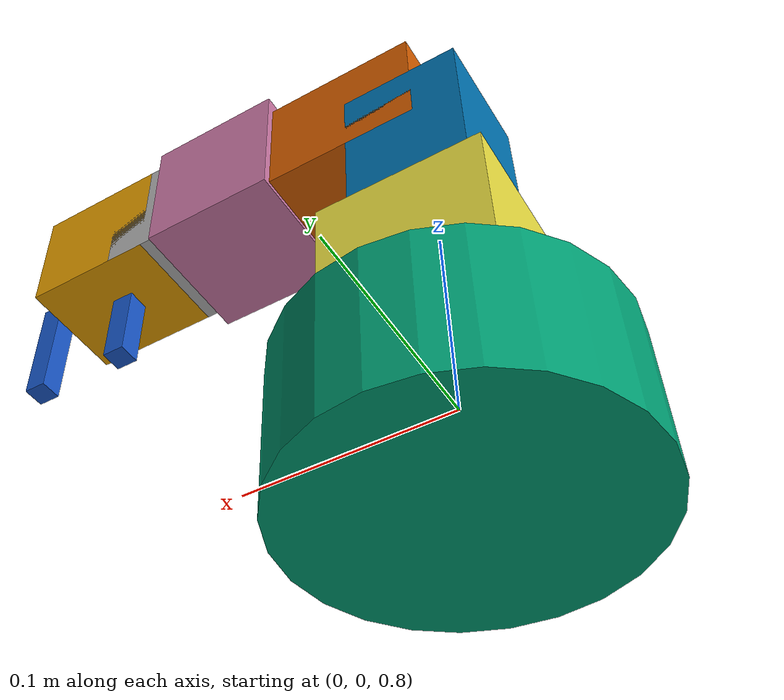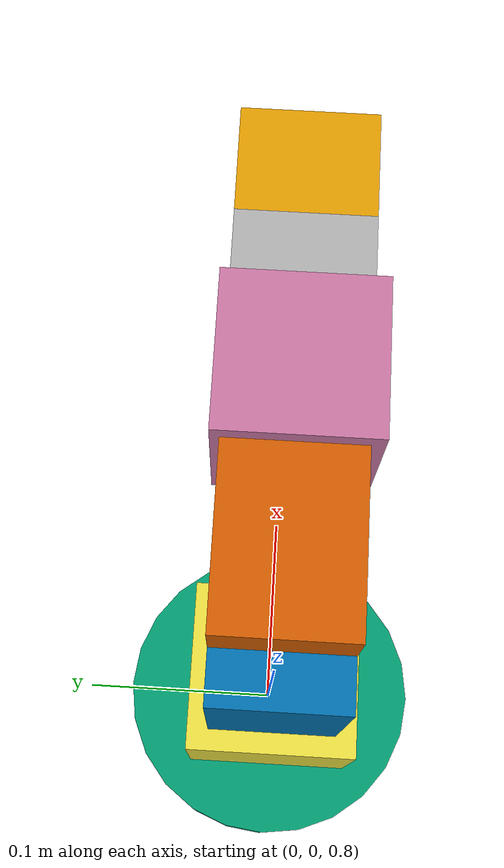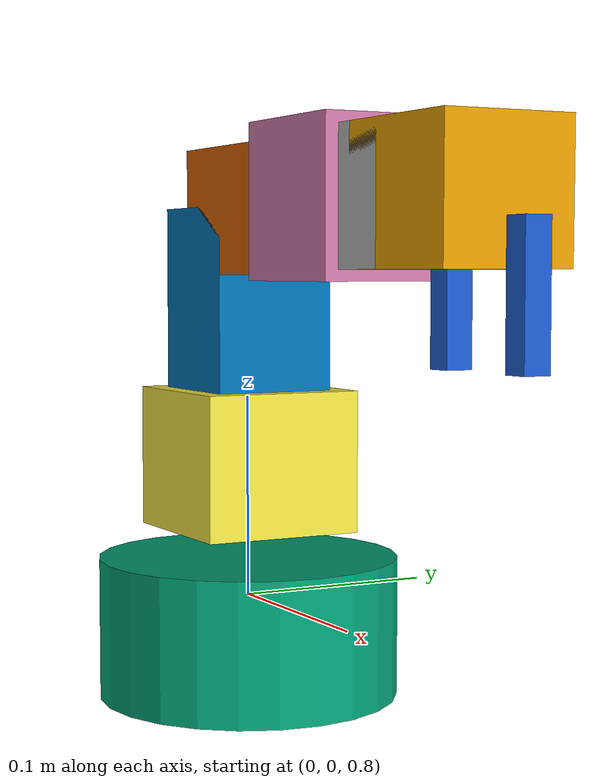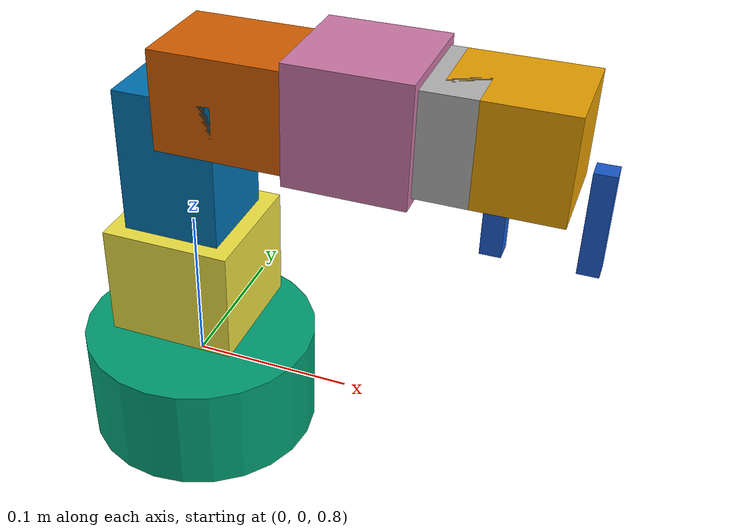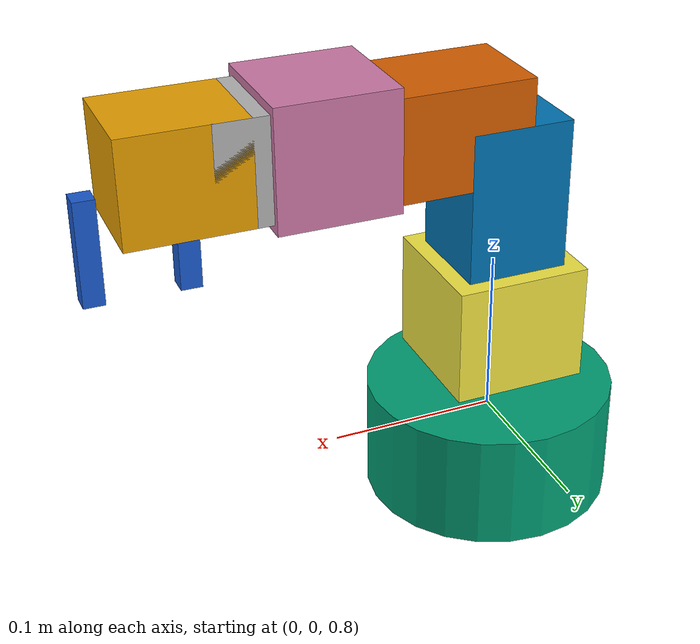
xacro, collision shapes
<?xml version="1.0"?>
<robot xmlns:xacro="http://www.ros.org/wiki/xacro" name="mecharm270_sim">
  <xacro:arg name="controllers_file" default=""/>
  <xacro:arg name="simulator" default="classic"/>
  <xacro:property name="simulator_backend" value="$(arg simulator)"/>
  <xacro:property name="arm_radius" value="0.026"/>

  <xacro:macro name="contact_sensor" params="link collision topic:=/gazebo/contacts/robot">
    <gazebo reference="${link}">
      <sensor type="contact" name="${link}_contact_sensor">
        <always_on>true</always_on>
        <update_rate>100</update_rate>
        <contact><collision>${collision}</collision><topic>${topic}</topic></contact>
        <xacro:if value="${simulator_backend == 'classic'}">
        <plugin name="${link}_contact_publisher" filename="libgazebo_ros_bumper.so">
          <ros>
            <namespace>/gazebo</namespace>
            <remapping>bumper_states:=contacts/robot</remapping>
          </ros>
          <frame_name>world</frame_name>
        </plugin>
        </xacro:if>
      </sensor>
    </gazebo>
  </xacro:macro>

  <material name="white"><color rgba="0.92 0.92 0.92 1"/></material>
  <material name="blue"><color rgba="0.10 0.35 0.80 1"/></material>
  <material name="dark"><color rgba="0.08 0.08 0.10 1"/></material>
  <xacro:property name="cad_mesh_root"
                  value="package://robot_pick_place_sim/meshes/mecharm_270_m5"/>

  <!-- The world joint represents the bolted base required by the experiment.
       Its 0.75 m offset is shared by Gazebo and TF, avoiding a second transform. -->
  <link name="world"/>
  <joint name="world_fixed_joint" type="fixed">
    <parent link="world"/><child link="base_footprint"/>
    <origin xyz="0 0 0.75"/>
  </joint>
  <!-- Inertia-free frame keeps the KDL root path valid. -->
  <link name="base_footprint"/>
  <joint name="base_fixed" type="fixed">
    <parent link="base_footprint"/><child link="base_link"/>
  </joint>

  <xacro:macro name="cad_link"
               params="name visual_xyz visual_rpy collision_xyz collision_size mass:=0.25">
    <link name="${name}">
      <inertial><origin xyz="${collision_xyz}"/><mass value="${mass}"/><inertia ixx="0.001" ixy="0" ixz="0" iyy="0.001" iyz="0" izz="0.001"/></inertial>
      <visual><origin xyz="${visual_xyz}" rpy="${visual_rpy}"/><geometry><mesh filename="${cad_mesh_root}/${name}.dae"/></geometry></visual>
      <collision name="${name}_collision"><origin xyz="${collision_xyz}"/><geometry><box size="${collision_size}"/></geometry></collision>
    </link>
  </xacro:macro>

  <link name="base_link">
    <inertial><mass value="1.0"/><inertia ixx="0.01" ixy="0" ixz="0" iyy="0.01" iyz="0" izz="0.01"/></inertial>
    <visual><origin xyz="0 0 0" rpy="0 0 -${pi}"/><geometry><mesh filename="${cad_mesh_root}/base.dae"/></geometry></visual>
    <collision name="base_link_collision"><origin xyz="0 0 0.035"/><geometry><cylinder radius="0.075" length="0.07"/></geometry></collision>
  </link>
  <xacro:cad_link name="link1" visual_xyz="0 0 -0.132" visual_rpy="0 0 0"
                  collision_xyz="0 0 0.019" collision_size="0.08 0.08 0.07" mass="0.5"/>
  <xacro:cad_link name="link2" visual_xyz="-0.005 0.21 0.002" visual_rpy="1.5708 -${pi} 0"
                  collision_xyz="0 -0.05 0" collision_size="0.06 0.11 0.06"/>
  <xacro:cad_link name="link3" visual_xyz="-0.09 0.306 0.005" visual_rpy="1.5708 ${pi} 0"
                  collision_xyz="0.054 -0.0025 0" collision_size="0.12 0.06 0.06"/>
  <xacro:cad_link name="link4" visual_xyz="0.009 -0.311 -0.228" visual_rpy="0 1.5708 1.5708"
                  collision_xyz="0 0 0" collision_size="0.07 0.07 0.07"/>
  <xacro:cad_link name="link5" visual_xyz="-0.292 -0.318 -0.007" visual_rpy="1.5708 0 ${pi}"
                  collision_xyz="0.03 0 0" collision_size="0.07 0.06 0.06"/>
  <xacro:cad_link name="link6" visual_xyz="-0.1645 0.0536 -0.211" visual_rpy="0 1.5708 0"
                  collision_xyz="0 0 0.019" collision_size="0.06 0.06 0.07"/>

  <xacro:macro name="arm_joint" params="name parent child xyz rpy lower upper">
    <joint name="${name}" type="revolute"><parent link="${parent}"/><child link="${child}"/><origin xyz="${xyz}" rpy="${rpy}"/><axis xyz="0 0 1"/><limit lower="${lower}" upper="${upper}" effort="30" velocity="1.5"/><dynamics damping="0.15" friction="0.05"/></joint>
  </xacro:macro>
  <xacro:arm_joint name="joint1" parent="base_link" child="link1" xyz="0 0 0.1" rpy="0 0 0" lower="-2.792527" upper="2.792527"/>
  <xacro:arm_joint name="joint2" parent="link1" child="link2" xyz="0 0 0.038" rpy="-${pi/2} 0 0" lower="-1.3089" upper="2.0943"/>
  <xacro:arm_joint name="joint3" parent="link2" child="link3" xyz="0 -0.1 0" rpy="0 0 0" lower="-3.0543" upper="1.1344"/>
  <xacro:arm_joint name="joint4" parent="link3" child="link4" xyz="0.108 -0.005 -0.001" rpy="0 ${pi/2} 0" lower="-2.7052" upper="2.7052"/>
  <xacro:arm_joint name="joint5" parent="link4" child="link5" xyz="-0.001 0 0" rpy="0 -${pi/2} 0" lower="-2.0071" upper="2.0071"/>
  <xacro:arm_joint name="joint6" parent="link5" child="link6" xyz="0.06 0 0" rpy="0 ${pi/2} 0" lower="-${pi}" upper="${pi}"/>

  <link name="tool0"><visual><origin xyz="0 0 -0.006"/><geometry><cylinder radius="0.034" length="0.025"/></geometry><material name="dark"/></visual><collision name="tool0_collision"><origin xyz="0 0 -0.006"/><geometry><cylinder radius="0.010" length="0.020"/></geometry></collision><inertial><mass value="0.08"/><inertia ixx="0.0001" ixy="0" ixz="0" iyy="0.0001" iyz="0" izz="0.0001"/></inertial></link>
  <joint name="tool_fixed" type="fixed"><parent link="link6"/><child link="tool0"/><origin xyz="0 0 0.038" rpy="1.579 0 0"/></joint>
  <!-- The compensated child transforms retain vertical finger geometry while
       preserving the non-singular DART joint frames used by both backends. -->
  <link name="left_finger"><visual><origin xyz="-0.031123 0 0.025127" rpy="0 2.25 0"/><geometry><box size="0.012 0.012 0.06"/></geometry><material name="blue"/></visual><collision name="left_finger_collision"><origin xyz="-0.031123 0 0.025127" rpy="0 2.25 0"/><geometry><box size="0.012 0.012 0.06"/></geometry></collision><inertial><mass value="0.03"/><inertia ixx="0.00002" ixy="0" ixz="0" iyy="0.00002" iyz="0" izz="0.00002"/></inertial></link>
  <joint name="left_finger_joint" type="prismatic"><parent link="tool0"/><child link="left_finger"/><origin xyz="0 0.006 0" rpy="0 -2.25 0"/><axis xyz="0 1 0"/><limit lower="0.012" upper="0.032" effort="15" velocity="0.08"/><dynamics damping="0.35" friction="0.05"/></joint>
  <link name="right_finger"><visual><origin xyz="0 -0.018 -0.04"/><geometry><box size="0.012 0.012 0.06"/></geometry><material name="blue"/></visual><collision name="right_finger_collision"><origin xyz="0 -0.018 -0.04"/><geometry><box size="0.012 0.012 0.06"/></geometry></collision><inertial><mass value="0.03"/><inertia ixx="0.00002" ixy="0" ixz="0" iyy="0.00002" iyz="0" izz="0.00002"/></inertial></link>
  <joint name="right_finger_joint" type="revolute"><parent link="tool0"/><child link="right_finger"/><origin xyz="0 -0.006 0"/><axis xyz="1 0 0"/><limit lower="-0.40" upper="0.20" effort="15" velocity="0.8"/><dynamics damping="0.35" friction="0.05"/></joint>

  <ros2_control name="GazeboSystem" type="system">
    <hardware>
      <xacro:if value="${simulator_backend == 'classic'}"><plugin>gazebo_ros2_control/GazeboSystem</plugin></xacro:if>
      <xacro:if value="${simulator_backend == 'fortress'}"><plugin>gz_ros2_control/GazeboSimSystem</plugin></xacro:if>
    </hardware>
    <xacro:macro name="controlled_joint" params="name initial:=0.0">
      <joint name="${name}"><command_interface name="position"><param name="min">-3.14</param><param name="max">3.14</param></command_interface><state_interface name="position"><param name="initial_value">${initial}</param></state_interface><state_interface name="velocity"/></joint>
    </xacro:macro>
    <xacro:controlled_joint name="joint1"/><xacro:controlled_joint name="joint2"/><xacro:controlled_joint name="joint3"/>
    <xacro:controlled_joint name="joint4"/><xacro:controlled_joint name="joint5"/><xacro:controlled_joint name="joint6"/>
    <joint name="left_finger_joint"><command_interface name="position"><param name="min">0.012</param><param name="max">0.032</param></command_interface><state_interface name="position"><param name="initial_value">0.032</param></state_interface><state_interface name="velocity"/></joint>
    <joint name="right_finger_joint"><command_interface name="position"><param name="min">-0.40</param><param name="max">0.20</param></command_interface><state_interface name="position"><param name="initial_value">-0.35</param></state_interface><state_interface name="velocity"/></joint>
  </ros2_control>
  <xacro:if value="${simulator_backend == 'classic'}"><gazebo>
    <self_collide>false</self_collide>
    <plugin filename="libgazebo_ros2_control.so" name="gazebo_ros2_control"><parameters>$(arg controllers_file)</parameters></plugin>
  </gazebo></xacro:if>
  <xacro:if value="${simulator_backend == 'fortress'}"><gazebo>
    <self_collide>false</self_collide>
    <plugin filename="libgz_ros2_control-system.so" name="gz_ros2_control::GazeboSimROS2ControlPlugin">
      <parameters>$(arg controllers_file)</parameters>
      <!-- Track MoveIt trajectories closely without exceeding the documented
           non-oscillating gain bound (position error -> joint velocity). -->
      <position_proportional_gain>0.5</position_proportional_gain>
      <ros><remapping>/joint_states:=/fortress/joint_states_raw</remapping></ros>
    </plugin>
    <plugin filename="ignition-gazebo-detachable-joint-system" name="ignition::gazebo::systems::DetachableJoint">
      <parent_link>tool0</parent_link><child_model>target_object</child_model><child_link>object</child_link>
      <attach_topic>/grasp/attach_cmd</attach_topic><detach_topic>/grasp/detach_cmd</detach_topic>
      <output_topic>/grasp/attached</output_topic>
    </plugin>
  </gazebo></xacro:if>
  <gazebo reference="tool_fixed"><preserveFixedJoint>true</preserveFixedJoint></gazebo>
  <gazebo reference="left_finger"><mu1>2.0</mu1><mu2>2.0</mu2></gazebo>
  <gazebo reference="right_finger"><mu1>2.0</mu1><mu2>2.0</mu2></gazebo>

  <xacro:if value="${simulator_backend == 'classic'}">
  <xacro:contact_sensor link="base_link" collision="base_link_collision"/>
  <xacro:contact_sensor link="link1" collision="link1_collision"/>
  <xacro:contact_sensor link="link2" collision="link2_collision"/>
  <xacro:contact_sensor link="link3" collision="link3_collision"/>
  <xacro:contact_sensor link="link4" collision="link4_collision"/>
  <xacro:contact_sensor link="link5" collision="link5_collision"/>
  <xacro:contact_sensor link="link6" collision="link6_collision"/>
  <xacro:contact_sensor link="tool0" collision="tool0_collision"/>
  <xacro:contact_sensor link="left_finger" collision="left_finger_collision"/>
  <xacro:contact_sensor link="right_finger" collision="right_finger_collision"/>
  </xacro:if>
  <xacro:if value="${simulator_backend == 'fortress'}">
    <!-- Fortress contact sensors on dynamic objects only emit while contact
         exists, so each finger has an independent physical source. -->
    <xacro:contact_sensor link="left_finger" collision="left_finger_collision"
                          topic="/gazebo/contacts/left_finger"/>
    <xacro:contact_sensor link="right_finger" collision="right_finger_collision"
                          topic="/gazebo/contacts/right_finger"/>
  </xacro:if>
</robot>
